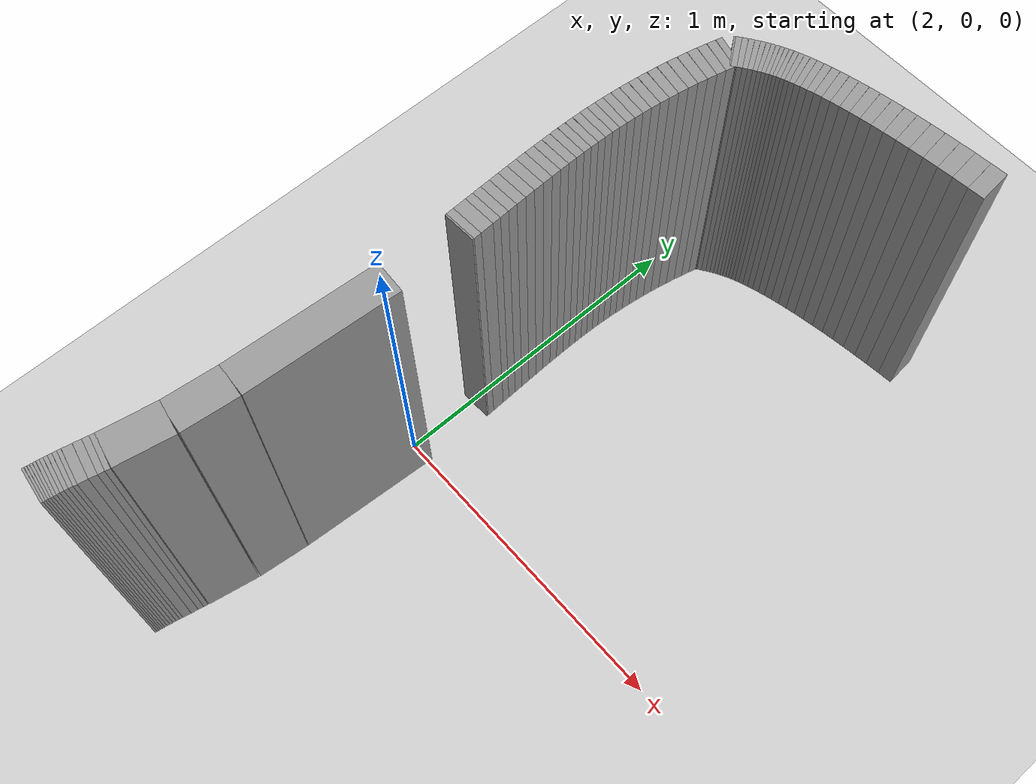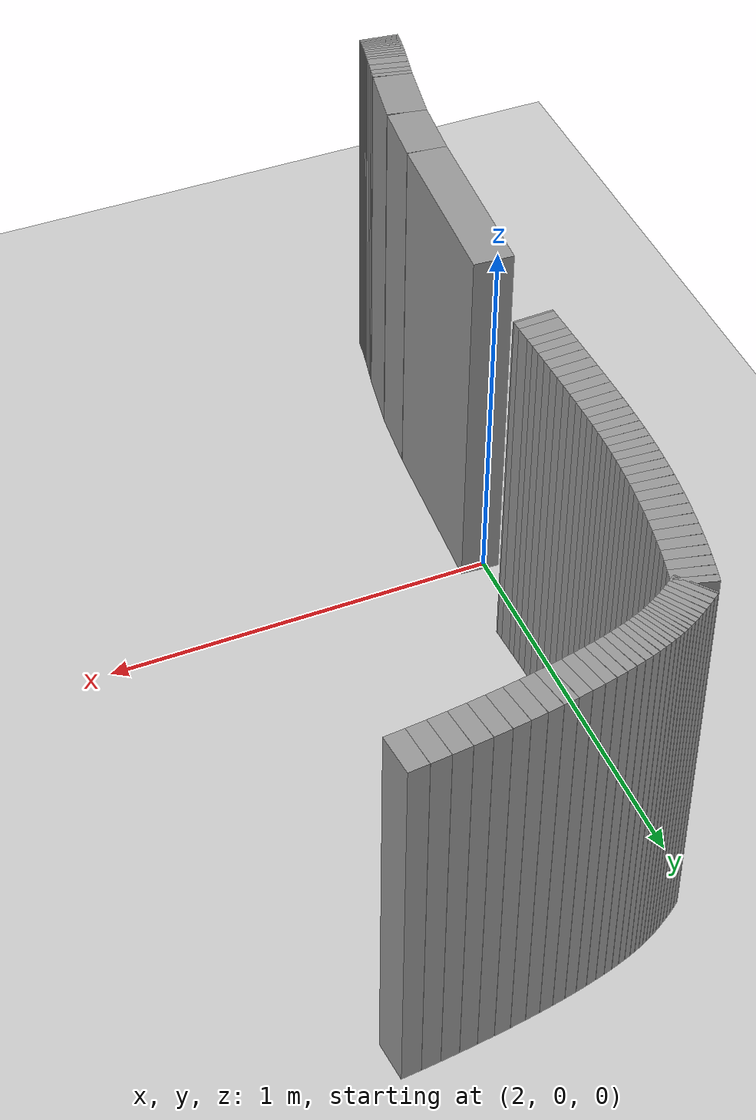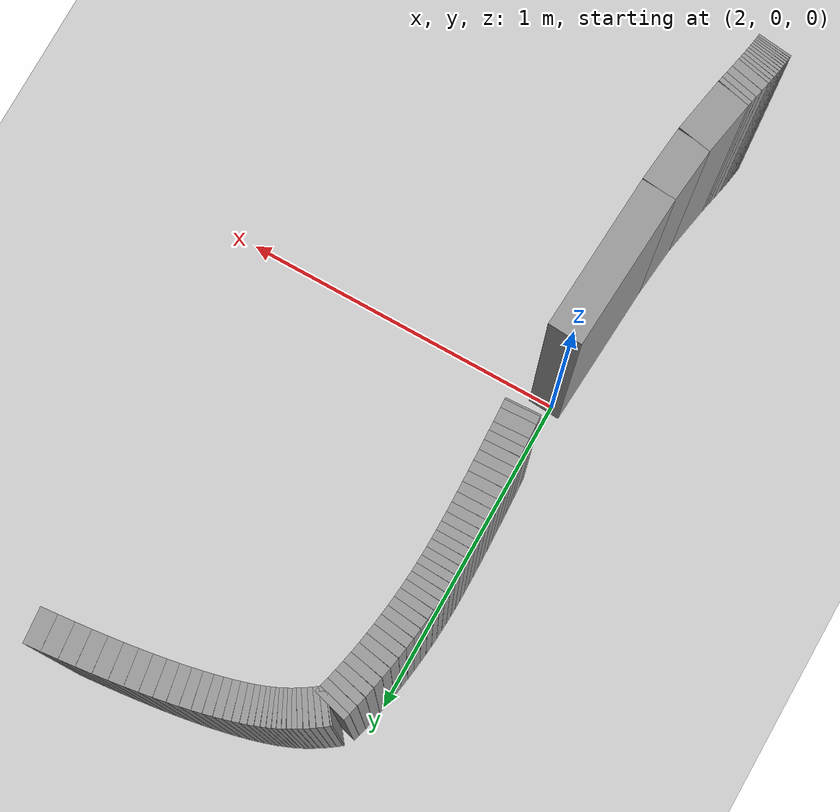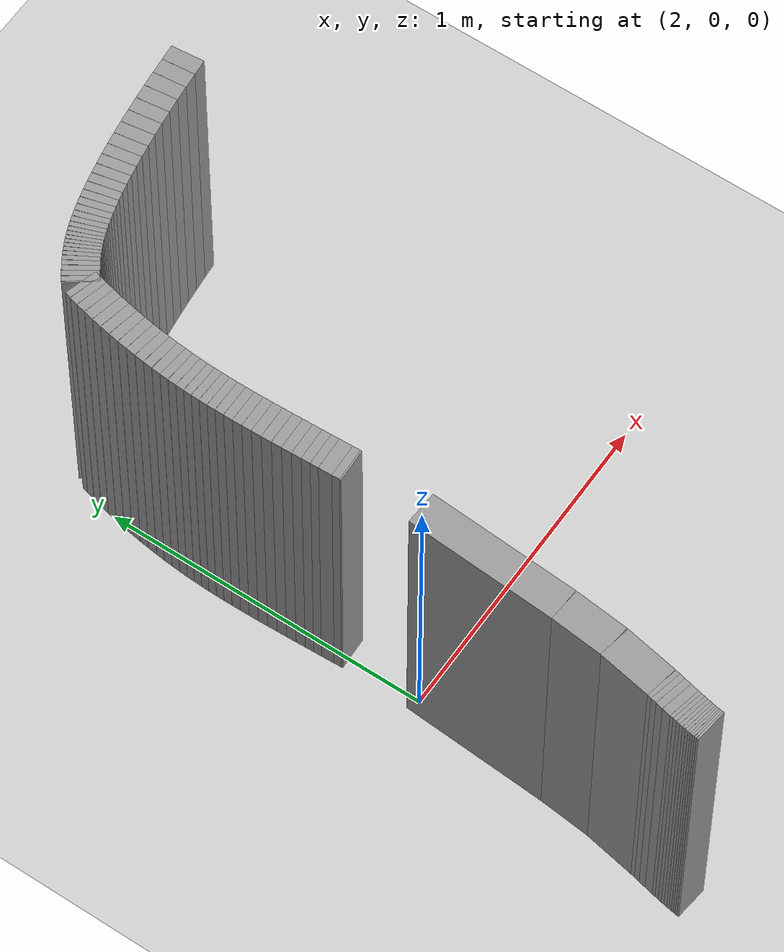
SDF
<sdf version="1.6">
 <world name="default">
  <include><uri>model://ground_plane</uri></include>
  <include><uri>model://sun</uri></include>
  <model name="wall_0_inward">
   <static>true</static>
   <link name="link">
    <collision name="collision">
     <geometry><box><size>0.004752488777631584 0.1 1.0</size></box></geometry>
    </collision>
    <visual name="visual">
     <geometry><box><size>0.004752488777631584 0.1 1.0</size></box></geometry>
     <material>
      <script><uri>file://media/materials/scripts/gazebo.material</uri><name>Gazebo/Gray</name></script>
     </material>
    </visual>
   </link>
   <pose>2.0192168269931265 0.23028894062897728 0.5 0 0 1.6136763923638089</pose>
  </model>
  <model name="wall_1_inward">
   <static>true</static>
   <link name="link">
    <collision name="collision">
     <geometry><box><size>0.023342387828069237 0.1 1.0</size></box></geometry>
    </collision>
    <visual name="visual">
     <geometry><box><size>0.023342387828069237 0.1 1.0</size></box></geometry>
     <material>
      <script><uri>file://media/materials/scripts/gazebo.material</uri><name>Gazebo/Gray</name></script>
     </material>
    </visual>
   </link>
   <pose>2.0186158145275828 0.2443235160274392 0.5 0 0 1.613577079627767</pose>
  </model>
  <model name="wall_2_inward">
   <static>true</static>
   <link name="link">
    <collision name="collision">
     <geometry><box><size>0.03983751512291781 0.1 1.0</size></box></geometry>
    </collision>
    <visual name="visual">
     <geometry><box><size>0.03983751512291781 0.1 1.0</size></box></geometry>
     <material>
      <script><uri>file://media/materials/scripts/gazebo.material</uri><name>Gazebo/Gray</name></script>
     </material>
    </visual>
   </link>
   <pose>2.0172711593536725 0.2758848359116663 0.5 0 0 1.613256761917696</pose>
  </model>
  <model name="wall_3_inward">
   <static>true</static>
   <link name="link">
    <collision name="collision">
     <geometry><box><size>0.024427862933217706 0.1 1.0</size></box></geometry>
    </collision>
    <visual name="visual">
     <geometry><box><size>0.024427862933217706 0.1 1.0</size></box></geometry>
     <material>
      <script><uri>file://media/materials/scripts/gazebo.material</uri><name>Gazebo/Gray</name></script>
     </material>
    </visual>
   </link>
   <pose>2.0159151530311705 0.30798889870328605 0.5 0 0 1.6126051479106165</pose>
  </model>
  <model name="wall_4_inward">
   <static>true</static>
   <link name="link">
    <collision name="collision">
     <geometry><box><size>0.026964489736908515 0.1 1.0</size></box></geometry>
    </collision>
    <visual name="visual">
     <geometry><box><size>0.026964489736908515 0.1 1.0</size></box></geometry>
     <material>
      <script><uri>file://media/materials/scripts/gazebo.material</uri><name>Gazebo/Gray</name></script>
     </material>
    </visual>
   </link>
   <pose>2.014852378140991 0.33366308560661406 0.5 0 0 1.611770818853796</pose>
  </model>
  <model name="wall_5_inward">
   <static>true</static>
   <link name="link">
    <collision name="collision">
     <geometry><box><size>0.028721153649069468 0.1 1.0</size></box></geometry>
    </collision>
    <visual name="visual">
     <geometry><box><size>0.028721153649069468 0.1 1.0</size></box></geometry>
     <material>
      <script><uri>file://media/materials/scripts/gazebo.material</uri><name>Gazebo/Gray</name></script>
     </material>
    </visual>
   </link>
   <pose>2.0137296399317623 0.36148325600857956 0.5 0 0 1.6105311360931867</pose>
  </model>
  <model name="wall_6_inward">
   <static>true</static>
   <link name="link">
    <collision name="collision">
     <geometry><box><size>0.02982938638237102 0.1 1.0</size></box></geometry>
    </collision>
    <visual name="visual">
     <geometry><box><size>0.02982938638237102 0.1 1.0</size></box></geometry>
     <material>
      <script><uri>file://media/materials/scripts/gazebo.material</uri><name>Gazebo/Gray</name></script>
     </material>
    </visual>
   </link>
   <pose>2.0125932463432052 0.39073645009895075 0.5 0 0 1.6087498288129731</pose>
  </model>
  <model name="wall_7_inward">
   <static>true</static>
   <link name="link">
    <collision name="collision">
     <geometry><box><size>0.030343167874813035 0.1 1.0</size></box></geometry>
    </collision>
    <visual name="visual">
     <geometry><box><size>0.030343167874813035 0.1 1.0</size></box></geometry>
     <material>
      <script><uri>file://media/materials/scripts/gazebo.material</uri><name>Gazebo/Gray</name></script>
     </material>
    </visual>
   </link>
   <pose>2.011488520161061 0.4208024161180741 0.5 0 0 1.6063173743649763</pose>
  </model>
  <model name="wall_8_inward">
   <static>true</static>
   <link name="link">
    <collision name="collision">
     <geometry><box><size>0.030314418424380436 0.1 1.0</size></box></geometry>
    </collision>
    <visual name="visual">
     <geometry><box><size>0.030314418424380436 0.1 1.0</size></box></geometry>
     <material>
      <script><uri>file://media/materials/scripts/gazebo.material</uri><name>Gazebo/Gray</name></script>
     </material>
    </visual>
   </link>
   <pose>2.010459952303529 0.4511137239637477 0.5 0 0 1.6031146702302448</pose>
  </model>
  <model name="wall_9_inward">
   <static>true</static>
   <link name="link">
    <collision name="collision">
     <geometry><box><size>0.029843154811731352 0.1 1.0</size></box></geometry>
    </collision>
    <visual name="visual">
     <geometry><box><size>0.029843154811731352 0.1 1.0</size></box></geometry>
     <material>
      <script><uri>file://media/materials/scripts/gazebo.material</uri><name>Gazebo/Gray</name></script>
     </material>
    </visual>
   </link>
   <pose>2.0095489324784364 0.48117864830306917 0.5 0 0 1.599030954062844</pose>
  </model>
  <model name="wall_10_inward">
   <static>true</static>
   <link name="link">
    <collision name="collision">
     <geometry><box><size>0.0290227304392933 0.1 1.0</size></box></geometry>
    </collision>
    <visual name="visual">
     <geometry><box><size>0.0290227304392933 0.1 1.0</size></box></geometry>
     <material>
      <script><uri>file://media/materials/scripts/gazebo.material</uri><name>Gazebo/Gray</name></script>
     </material>
    </visual>
   </link>
   <pose>2.0087912374655685 0.5106017428562545 0.5 0 0 1.5939833912730672</pose>
  </model>
  <model name="wall_11_inward">
   <static>true</static>
   <link name="link">
    <collision name="collision">
     <geometry><box><size>0.027980054495972583 0.1 1.0</size></box></geometry>
    </collision>
    <visual name="visual">
     <geometry><box><size>0.027980054495972583 0.1 1.0</size></box></geometry>
     <material>
      <script><uri>file://media/materials/scripts/gazebo.material</uri><name>Gazebo/Gray</name></script>
     </material>
    </visual>
   </link>
   <pose>2.0082157341983695 0.5390971919330221 0.5 0 0 1.5878848632838005</pose>
  </model>
  <model name="wall_12_inward">
   <static>true</static>
   <link name="link">
    <collision name="collision">
     <geometry><box><size>0.026877534619564606 0.1 1.0</size></box></geometry>
    </collision>
    <visual name="visual">
     <geometry><box><size>0.026877534619564606 0.1 1.0</size></box></geometry>
     <material>
      <script><uri>file://media/materials/scripts/gazebo.material</uri><name>Gazebo/Gray</name></script>
     </material>
    </visual>
   </link>
   <pose>2.0078435032655686 0.5665232840025991 0.5 0 0 1.5807061387290586</pose>
  </model>
  <model name="wall_13_inward">
   <static>true</static>
   <link name="link">
    <collision name="collision">
     <geometry><box><size>0.02581808341216024 0.1 1.0</size></box></geometry>
    </collision>
    <visual name="visual">
     <geometry><box><size>0.02581808341216024 0.1 1.0</size></box></geometry>
     <material>
      <script><uri>file://media/materials/scripts/gazebo.material</uri><name>Gazebo/Gray</name></script>
     </material>
    </visual>
   </link>
   <pose>2.0076888932343033 0.5928704153523889 0.5 0 0 1.572456912039459</pose>
  </model>
  <model name="wall_14_inward">
   <static>true</static>
   <link name="link">
    <collision name="collision">
     <geometry><box><size>0.02494034010264103 0.1 1.0</size></box></geometry>
    </collision>
    <visual name="visual">
     <geometry><box><size>0.02494034010264103 0.1 1.0</size></box></geometry>
     <material>
      <script><uri>file://media/materials/scripts/gazebo.material</uri><name>Gazebo/Gray</name></script>
     </material>
    </visual>
   </link>
   <pose>2.007762821055829 0.618249244661087 0.5 0 0 1.5631488524611368</pose>
  </model>
  <model name="wall_15_inward">
   <static>true</static>
   <link name="link">
    <collision name="collision">
     <geometry><box><size>0.024343581088115216 0.1 1.0</size></box></geometry>
    </collision>
    <visual name="visual">
     <geometry><box><size>0.024343581088115216 0.1 1.0</size></box></geometry>
     <material>
      <script><uri>file://media/materials/scripts/gazebo.material</uri><name>Gazebo/Gray</name></script>
     </material>
    </visual>
   </link>
   <pose>2.0080762167423636 0.6428888876699473 0.5 0 0 1.5528825308320764</pose>
  </model>
  <model name="wall_16_inward">
   <static>true</static>
   <link name="link">
    <collision name="collision">
     <geometry><box><size>0.024041992400886777 0.1 1.0</size></box></geometry>
    </collision>
    <visual name="visual">
     <geometry><box><size>0.024041992400886777 0.1 1.0</size></box></geometry>
     <material>
      <script><uri>file://media/materials/scripts/gazebo.material</uri><name>Gazebo/Gray</name></script>
     </material>
    </visual>
   </link>
   <pose>2.0086435391284465 0.6670746457748014 0.5 0 0 1.5417354869921274</pose>
  </model>
  <model name="wall_17_inward">
   <static>true</static>
   <link name="link">
    <collision name="collision">
     <geometry><box><size>0.024066006515898745 0.1 1.0</size></box></geometry>
    </collision>
    <visual name="visual">
     <geometry><box><size>0.024066006515898745 0.1 1.0</size></box></geometry>
     <material>
      <script><uri>file://media/materials/scripts/gazebo.material</uri><name>Gazebo/Gray</name></script>
     </material>
    </visual>
   </link>
   <pose>2.009485944902835 0.6911134613185428 0.5 0 0 1.529804662983416</pose>
  </model>
  <model name="wall_18_inward">
   <static>true</static>
   <link name="link">
    <collision name="collision">
     <geometry><box><size>0.024414961323806196 0.1 1.0</size></box></geometry>
    </collision>
    <visual name="visual">
     <geometry><box><size>0.024414961323806196 0.1 1.0</size></box></geometry>
     <material>
      <script><uri>file://media/materials/scripts/gazebo.material</uri><name>Gazebo/Gray</name></script>
     </material>
    </visual>
   </link>
   <pose>2.0106330683846227 0.715326305365062 0.5 0 0 1.5171962381443225</pose>
  </model>
  <model name="wall_19_inward">
   <static>true</static>
   <link name="link">
    <collision name="collision">
     <geometry><box><size>0.025035178204173517 0.1 1.0</size></box></geometry>
    </collision>
    <visual name="visual">
     <geometry><box><size>0.025035178204173517 0.1 1.0</size></box></geometry>
     <material>
      <script><uri>file://media/materials/scripts/gazebo.material</uri><name>Gazebo/Gray</name></script>
     </material>
    </visual>
   </link>
   <pose>2.012122330133476 0.7400059456907732 0.5 0 0 1.5040203671051064</pose>
  </model>
  <model name="wall_20_inward">
   <static>true</static>
   <link name="link">
    <collision name="collision">
     <geometry><box><size>0.025840020215233482 0.1 1.0</size></box></geometry>
    </collision>
    <visual name="visual">
     <geometry><box><size>0.025840020215233482 0.1 1.0</size></box></geometry>
     <material>
      <script><uri>file://media/materials/scripts/gazebo.material</uri><name>Gazebo/Gray</name></script>
     </material>
    </visual>
   </link>
   <pose>2.013995731281431 0.7653738709611354 0.5 0 0 1.4903576464301487</pose>
  </model>
  <model name="wall_21_inward">
   <static>true</static>
   <link name="link">
    <collision name="collision">
     <geometry><box><size>0.02676281056988687 0.1 1.0</size></box></geometry>
    </collision>
    <visual name="visual">
     <geometry><box><size>0.02676281056988687 0.1 1.0</size></box></geometry>
     <material>
      <script><uri>file://media/materials/scripts/gazebo.material</uri><name>Gazebo/Gray</name></script>
     </material>
    </visual>
   </link>
   <pose>2.016296901283336 0.7915737708407318 0.5 0 0 1.4762692810938869</pose>
  </model>
  <model name="wall_22_inward">
   <static>true</static>
   <link name="link">
    <collision name="collision">
     <geometry><box><size>0.027727477202340273 0.1 1.0</size></box></geometry>
    </collision>
    <visual name="visual">
     <geometry><box><size>0.027727477202340273 0.1 1.0</size></box></geometry>
     <material>
      <script><uri>file://media/materials/scripts/gazebo.material</uri><name>Gazebo/Gray</name></script>
     </material>
    </visual>
   </link>
   <pose>2.019067803286827 0.8186769296321728 0.5 0 0 1.4618164100696722</pose>
  </model>
  <model name="wall_23_inward">
   <static>true</static>
   <link name="link">
    <collision name="collision">
     <geometry><box><size>0.02866187000461032 0.1 1.0</size></box></geometry>
    </collision>
    <visual name="visual">
     <geometry><box><size>0.02866187000461032 0.1 1.0</size></box></geometry>
     <material>
      <script><uri>file://media/materials/scripts/gazebo.material</uri><name>Gazebo/Gray</name></script>
     </material>
    </visual>
   </link>
   <pose>2.0223447819146765 0.8466797441127172 0.5 0 0 1.4470344970049571</pose>
  </model>
  <model name="wall_24_inward">
   <static>true</static>
   <link name="link">
    <collision name="collision">
     <geometry><box><size>0.02948811131125022 0.1 1.0</size></box></geometry>
    </collision>
    <visual name="visual">
     <geometry><box><size>0.02948811131125022 0.1 1.0</size></box></geometry>
     <material>
      <script><uri>file://media/materials/scripts/gazebo.material</uri><name>Gazebo/Gray</name></script>
     </material>
    </visual>
   </link>
   <pose>2.0261542668942782 0.8755032573518212 0.5 0 0 1.4319637068738533</pose>
  </model>
  <model name="wall_25_inward">
   <static>true</static>
   <link name="link">
    <collision name="collision">
     <geometry><box><size>0.030134634040723952 0.1 1.0</size></box></geometry>
    </collision>
    <visual name="visual">
     <geometry><box><size>0.030134634040723952 0.1 1.0</size></box></geometry>
     <material>
      <script><uri>file://media/materials/scripts/gazebo.material</uri><name>Gazebo/Gray</name></script>
     </material>
    </visual>
   </link>
   <pose>2.0305086081573593 0.9049940236370653 0.5 0 0 1.416611713133062</pose>
  </model>
  <model name="wall_26_inward">
   <static>true</static>
   <link name="link">
    <collision name="collision">
     <geometry><box><size>0.03053798128975762 0.1 1.0</size></box></geometry>
    </collision>
    <visual name="visual">
     <geometry><box><size>0.03053798128975762 0.1 1.0</size></box></geometry>
     <material>
      <script><uri>file://media/materials/scripts/gazebo.material</uri><name>Gazebo/Gray</name></script>
     </material>
    </visual>
   </link>
   <pose>2.0354028873412062 0.9349319837104837 0.5 0 0 1.4009903079884392</pose>
  </model>
  <model name="wall_27_inward">
   <static>true</static>
   <link name="link">
    <collision name="collision">
     <geometry><box><size>0.03061586388762394 0.1 1.0</size></box></geometry>
    </collision>
    <visual name="visual">
     <geometry><box><size>0.03061586388762394 0.1 1.0</size></box></geometry>
     <material>
      <script><uri>file://media/materials/scripts/gazebo.material</uri><name>Gazebo/Gray</name></script>
     </material>
    </visual>
   </link>
   <pose>2.04080980964906 0.965026073330829 0.5 0 0 1.385081383273069</pose>
  </model>
  <model name="wall_28_inward">
   <static>true</static>
   <link name="link">
    <collision name="collision">
     <geometry><box><size>0.0303097720092783 0.1 1.0</size></box></geometry>
    </collision>
    <visual name="visual">
     <geometry><box><size>0.0303097720092783 0.1 1.0</size></box></geometry>
     <material>
      <script><uri>file://media/materials/scripts/gazebo.material</uri><name>Gazebo/Gray</name></script>
     </material>
    </visual>
   </link>
   <pose>2.046676249670041 0.9949176603655661 0.5 0 0 1.3688413495702825</pose>
  </model>
  <model name="wall_29_inward">
   <static>true</static>
   <link name="link">
    <collision name="collision">
     <geometry><box><size>0.02955791235792056 0.1 1.0</size></box></geometry>
    </collision>
    <visual name="visual">
     <geometry><box><size>0.02955791235792056 0.1 1.0</size></box></geometry>
     <material>
      <script><uri>file://media/materials/scripts/gazebo.material</uri><name>Gazebo/Gray</name></script>
     </material>
    </visual>
   </link>
   <pose>2.052920907680636 1.024191833336301 0.5 0 0 1.3522098565217084</pose>
  </model>
  <model name="wall_30_inward">
   <static>true</static>
   <link name="link">
    <collision name="collision">
     <geometry><box><size>0.028283167487776567 0.1 1.0</size></box></geometry>
    </collision>
    <visual name="visual">
     <geometry><box><size>0.028283167487776567 0.1 1.0</size></box></geometry>
     <material>
      <script><uri>file://media/materials/scripts/gazebo.material</uri><name>Gazebo/Gray</name></script>
     </material>
    </visual>
   </link>
   <pose>2.0594282306387903 1.0523696812064463 0.5 0 0 1.3350881583846912</pose>
  </model>
  <model name="wall_31_inward">
   <static>true</static>
   <link name="link">
    <collision name="collision">
     <geometry><box><size>0.026414433879784847 0.1 1.0</size></box></geometry>
    </collision>
    <visual name="visual">
     <geometry><box><size>0.026414433879784847 0.1 1.0</size></box></geometry>
     <material>
      <script><uri>file://media/materials/scripts/gazebo.material</uri><name>Gazebo/Gray</name></script>
     </material>
    </visual>
   </link>
   <pose>2.0660425878792763 1.078905473690782 0.5 0 0 1.3173304100757355</pose>
  </model>
  <model name="wall_32_inward">
   <static>true</static>
   <link name="link">
    <collision name="collision">
     <geometry><box><size>0.019414632581959114 0.1 1.0</size></box></geometry>
    </collision>
    <visual name="visual">
     <geometry><box><size>0.019414632581959114 0.1 1.0</size></box></geometry>
     <material>
      <script><uri>file://media/materials/scripts/gazebo.material</uri><name>Gazebo/Gray</name></script>
     </material>
    </visual>
   </link>
   <pose>2.071962820517917 1.1010410202298524 0.5 0 0 1.2987503364009885</pose>
  </model>
  <model name="wall_33_inward">
   <static>true</static>
   <link name="link">
    <collision name="collision">
     <geometry><box><size>0.00434184248768998 0.1 1.0</size></box></geometry>
    </collision>
    <visual name="visual">
     <geometry><box><size>0.00434184248768998 0.1 1.0</size></box></geometry>
     <material>
      <script><uri>file://media/materials/scripts/gazebo.material</uri><name>Gazebo/Gray</name></script>
     </material>
    </visual>
   </link>
   <pose>2.0762786759465537 1.1117320166385367 0.5 0 0 0.6656428096408088</pose>
  </model>
  <model name="wall_34_inward">
   <static>true</static>
   <link name="link">
    <collision name="collision">
     <geometry><box><size>0.01620740392853996 0.1 1.0</size></box></geometry>
    </collision>
    <visual name="visual">
     <geometry><box><size>0.01620740392853996 0.1 1.0</size></box></geometry>
     <material>
      <script><uri>file://media/materials/scripts/gazebo.material</uri><name>Gazebo/Gray</name></script>
     </material>
    </visual>
   </link>
   <pose>2.0844747109766297 1.1179274460873625 0.5 0 0 0.642348373617484</pose>
  </model>
  <model name="wall_35_inward">
   <static>true</static>
   <link name="link">
    <collision name="collision">
     <geometry><box><size>0.016024789953852005 0.1 1.0</size></box></geometry>
    </collision>
    <visual name="visual">
     <geometry><box><size>0.016024789953852005 0.1 1.0</size></box></geometry>
     <material>
      <script><uri>file://media/materials/scripts/gazebo.material</uri><name>Gazebo/Gray</name></script>
     </material>
    </visual>
   </link>
   <pose>2.0974885633969143 1.1274318209614234 0.5 0 0 0.6191027200617825</pose>
  </model>
  <model name="wall_36_inward">
   <static>true</static>
   <link name="link">
    <collision name="collision">
     <geometry><box><size>0.015394686876047848 0.1 1.0</size></box></geometry>
    </collision>
    <visual name="visual">
     <geometry><box><size>0.015394686876047848 0.1 1.0</size></box></geometry>
     <material>
      <script><uri>file://media/materials/scripts/gazebo.material</uri><name>Gazebo/Gray</name></script>
     </material>
    </visual>
   </link>
   <pose>2.110385286359999 1.1364004719628125 0.5 0 0 0.5957206283178764</pose>
  </model>
  <model name="wall_37_inward">
   <static>true</static>
   <link name="link">
    <collision name="collision">
     <geometry><box><size>0.014469726756846457 0.1 1.0</size></box></geometry>
    </collision>
    <visual name="visual">
     <geometry><box><size>0.014469726756846457 0.1 1.0</size></box></geometry>
     <material>
      <script><uri>file://media/materials/scripts/gazebo.material</uri><name>Gazebo/Gray</name></script>
     </material>
    </visual>
   </link>
   <pose>2.1228395176630728 1.1446364826596567 0.5 0 0 0.5721070769158757</pose>
  </model>
  <model name="wall_38_inward">
   <static>true</static>
   <link name="link">
    <collision name="collision">
     <geometry><box><size>0.013412776095773358 0.1 1.0</size></box></geometry>
    </collision>
    <visual name="visual">
     <geometry><box><size>0.013412776095773358 0.1 1.0</size></box></geometry>
     <material>
      <script><uri>file://media/materials/scripts/gazebo.material</uri><name>Gazebo/Gray</name></script>
     </material>
    </visual>
   </link>
   <pose>2.1346459970955864 1.1520484858478324 0.5 0 0 0.5481942287500865</pose>
  </model>
  <model name="wall_39_inward">
   <static>true</static>
   <link name="link">
    <collision name="collision">
     <geometry><box><size>0.012406153368581552 0.1 1.0</size></box></geometry>
    </collision>
    <visual name="visual">
     <geometry><box><size>0.012406153368581552 0.1 1.0</size></box></geometry>
     <material>
      <script><uri>file://media/materials/scripts/gazebo.material</uri><name>Gazebo/Gray</name></script>
     </material>
    </visual>
   </link>
   <pose>2.145740434214863 1.1586472287748177 0.5 0 0 0.5240067062414621</pose>
  </model>
  <model name="wall_40_inward">
   <static>true</static>
   <link name="link">
    <collision name="collision">
     <geometry><box><size>0.011580599240819856 0.1 1.0</size></box></geometry>
    </collision>
    <visual name="visual">
     <geometry><box><size>0.011580599240819856 0.1 1.0</size></box></geometry>
     <material>
      <script><uri>file://media/materials/scripts/gazebo.material</uri><name>Gazebo/Gray</name></script>
     </material>
    </visual>
   </link>
   <pose>2.1561937237846025 1.1645250212785694 0.5 0 0 0.4996154059463333</pose>
  </model>
  <model name="wall_41_inward">
   <static>true</static>
   <link name="link">
    <collision name="collision">
     <geometry><box><size>0.011053928107542516 0.1 1.0</size></box></geometry>
    </collision>
    <visual name="visual">
     <geometry><box><size>0.011053928107542516 0.1 1.0</size></box></geometry>
     <material>
      <script><uri>file://media/materials/scripts/gazebo.material</uri><name>Gazebo/Gray</name></script>
     </material>
    </visual>
   </link>
   <pose>2.1661910090672936 1.1698274323633318 0.5 0 0 0.47513325128207967</pose>
  </model>
  <model name="wall_42_inward">
   <static>true</static>
   <link name="link">
    <collision name="collision">
     <geometry><box><size>0.010909448079172782 0.1 1.0</size></box></geometry>
    </collision>
    <visual name="visual">
     <geometry><box><size>0.010909448079172782 0.1 1.0</size></box></geometry>
     <material>
      <script><uri>file://media/materials/scripts/gazebo.material</uri><name>Gazebo/Gray</name></script>
     </material>
    </visual>
   </link>
   <pose>2.1760157654674535 1.174731884724579 0.5 0 0 0.45071012761808826</pose>
  </model>
  <model name="wall_43_inward">
   <static>true</static>
   <link name="link">
    <collision name="collision">
     <geometry><box><size>0.011180276009109102 0.1 1.0</size></box></geometry>
    </collision>
    <visual name="visual">
     <geometry><box><size>0.011180276009109102 0.1 1.0</size></box></geometry>
     <material>
      <script><uri>file://media/materials/scripts/gazebo.material</uri><name>Gazebo/Gray</name></script>
     </material>
    </visual>
   </link>
   <pose>2.1860151089919553 1.1794206216516416 0.5 0 0 0.4265129522699647</pose>
  </model>
  <model name="wall_44_inward">
   <static>true</static>
   <link name="link">
    <collision name="collision">
     <geometry><box><size>0.011852906119657116 0.1 1.0</size></box></geometry>
    </collision>
    <visual name="visual">
     <geometry><box><size>0.011852906119657116 0.1 1.0</size></box></geometry>
     <material>
      <script><uri>file://media/materials/scripts/gazebo.material</uri><name>Gazebo/Gray</name></script>
     </material>
    </visual>
   </link>
   <pose>2.1965568193039604 1.1840558594655581 0.5 0 0 0.40270106148708346</pose>
  </model>
  <model name="wall_45_inward">
   <static>true</static>
   <link name="link">
    <collision name="collision">
     <geometry><box><size>0.012911091815561486 0.1 1.0</size></box></geometry>
    </collision>
    <visual name="visual">
     <geometry><box><size>0.012911091815561486 0.1 1.0</size></box></geometry>
     <material>
      <script><uri>file://media/materials/scripts/gazebo.material</uri><name>Gazebo/Gray</name></script>
     </material>
    </visual>
   </link>
   <pose>2.2080056278477485 1.1887694500978003 0.5 0 0 0.3794148081217486</pose>
  </model>
  <model name="wall_46_inward">
   <static>true</static>
   <link name="link">
    <collision name="collision">
     <geometry><box><size>0.014284325088535357 0.1 1.0</size></box></geometry>
    </collision>
    <visual name="visual">
     <geometry><box><size>0.014284325088535357 0.1 1.0</size></box></geometry>
     <material>
      <script><uri>file://media/materials/scripts/gazebo.material</uri><name>Gazebo/Gray</name></script>
     </material>
    </visual>
   </link>
   <pose>2.220694429799522 1.1936549781051229 0.5 0 0 0.356791842051994</pose>
  </model>
  <model name="wall_47_inward">
   <static>true</static>
   <link name="link">
    <collision name="collision">
     <geometry><box><size>0.015904275914566033 0.1 1.0</size></box></geometry>
    </collision>
    <visual name="visual">
     <geometry><box><size>0.015904275914566033 0.1 1.0</size></box></geometry>
     <material>
      <script><uri>file://media/materials/scripts/gazebo.material</uri><name>Gazebo/Gray</name></script>
     </material>
    </visual>
   </link>
   <pose>2.234897126057822 1.1987632183671821 0.5 0 0 0.3349041199932808</pose>
  </model>
  <model name="wall_48_inward">
   <static>true</static>
   <link name="link">
    <collision name="collision">
     <geometry><box><size>0.017694539078928304 0.1 1.0</size></box></geometry>
    </collision>
    <visual name="visual">
     <geometry><box><size>0.017694539078928304 0.1 1.0</size></box></geometry>
     <material>
      <script><uri>file://media/materials/scripts/gazebo.material</uri><name>Gazebo/Gray</name></script>
     </material>
    </visual>
   </link>
   <pose>2.250822611077594 1.2041081013601698 0.5 0 0 0.31382991746779765</pose>
  </model>
  <model name="wall_49_inward">
   <static>true</static>
   <link name="link">
    <collision name="collision">
     <geometry><box><size>0.019601996180276266 0.1 1.0</size></box></geometry>
    </collision>
    <visual name="visual">
     <geometry><box><size>0.019601996180276266 0.1 1.0</size></box></geometry>
     <material>
      <script><uri>file://media/materials/scripts/gazebo.material</uri><name>Gazebo/Gray</name></script>
     </material>
    </visual>
   </link>
   <pose>2.2686194326740123 1.2096754572577209 0.5 0 0 0.29357456260246323</pose>
  </model>
  <model name="wall_50_inward">
   <static>true</static>
   <link name="link">
    <collision name="collision">
     <geometry><box><size>0.021595705938246702 0.1 1.0</size></box></geometry>
    </collision>
    <visual name="visual">
     <geometry><box><size>0.021595705938246702 0.1 1.0</size></box></geometry>
     <material>
      <script><uri>file://media/materials/scripts/gazebo.material</uri><name>Gazebo/Gray</name></script>
     </material>
    </visual>
   </link>
   <pose>2.288395636543533 1.2154351973891924 0.5 0 0 0.27417693484043487</pose>
  </model>
  <model name="wall_51_inward">
   <static>true</static>
   <link name="link">
    <collision name="collision">
     <geometry><box><size>0.023637801076274136 0.1 1.0</size></box></geometry>
    </collision>
    <visual name="visual">
     <geometry><box><size>0.023637801076274136 0.1 1.0</size></box></geometry>
     <material>
      <script><uri>file://media/materials/scripts/gazebo.material</uri><name>Gazebo/Gray</name></script>
     </material>
    </visual>
   </link>
   <pose>2.3102250222273475 1.221347180054436 0.5 0 0 0.2556252093488778</pose>
  </model>
  <model name="wall_52_inward">
   <static>true</static>
   <link name="link">
    <collision name="collision">
     <geometry><box><size>0.02573562566059335 0.1 1.0</size></box></geometry>
    </collision>
    <visual name="visual">
     <geometry><box><size>0.02573562566059335 0.1 1.0</size></box></geometry>
     <material>
      <script><uri>file://media/materials/scripts/gazebo.material</uri><name>Gazebo/Gray</name></script>
     </material>
    </visual>
   </link>
   <pose>2.334165168256865 1.2273684434663472 0.5 0 0 0.23793134390882767</pose>
  </model>
  <model name="wall_53_inward">
   <static>true</static>
   <link name="link">
    <collision name="collision">
     <geometry><box><size>0.02786447518277288 0.1 1.0</size></box></geometry>
    </collision>
    <visual name="visual">
     <geometry><box><size>0.02786447518277288 0.1 1.0</size></box></geometry>
     <material>
      <script><uri>file://media/materials/scripts/gazebo.material</uri><name>Gazebo/Gray</name></script>
     </material>
    </visual>
   </link>
   <pose>2.360263542587016 1.2334566928744128 0.5 0 0 0.2211013209942195</pose>
  </model>
  <model name="wall_54_inward">
   <static>true</static>
   <link name="link">
    <collision name="collision">
     <geometry><box><size>0.03000685517327661 0.1 1.0</size></box></geometry>
    </collision>
    <visual name="visual">
     <geometry><box><size>0.03000685517327661 0.1 1.0</size></box></geometry>
     <material>
      <script><uri>file://media/materials/scripts/gazebo.material</uri><name>Gazebo/Gray</name></script>
     </material>
    </visual>
   </link>
   <pose>2.38854549458277 1.239568205860544 0.5 0 0 0.2051299396366354</pose>
  </model>
  <model name="wall_55_inward">
   <static>true</static>
   <link name="link">
    <collision name="collision">
     <geometry><box><size>0.032166927412550395 0.1 1.0</size></box></geometry>
    </collision>
    <visual name="visual">
     <geometry><box><size>0.032166927412550395 0.1 1.0</size></box></geometry>
     <material>
      <script><uri>file://media/materials/scripts/gazebo.material</uri><name>Gazebo/Gray</name></script>
     </material>
    </visual>
   </link>
   <pose>2.4190283653760476 1.2456619927166637 0.5 0 0 0.19001062667307636</pose>
  </model>
  <model name="wall_56_inward">
   <static>true</static>
   <link name="link">
    <collision name="collision">
     <geometry><box><size>0.034327217895600566 0.1 1.0</size></box></geometry>
    </collision>
    <visual name="visual">
     <geometry><box><size>0.034327217895600566 0.1 1.0</size></box></geometry>
     <material>
      <script><uri>file://media/materials/scripts/gazebo.material</uri><name>Gazebo/Gray</name></script>
     </material>
    </visual>
   </link>
   <pose>2.4517215949020157 1.2517005687269118 0.5 0 0 0.17574430428942867</pose>
  </model>
  <model name="wall_57_inward">
   <static>true</static>
   <link name="link">
    <collision name="collision">
     <geometry><box><size>0.036452578061710886 0.1 1.0</size></box></geometry>
    </collision>
    <visual name="visual">
     <geometry><box><size>0.036452578061710886 0.1 1.0</size></box></geometry>
     <material>
      <script><uri>file://media/materials/scripts/gazebo.material</uri><name>Gazebo/Gray</name></script>
     </material>
    </visual>
   </link>
   <pose>2.4866075669097363 1.2576467743529203 0.5 0 0 0.16230809736749532</pose>
  </model>
  <model name="wall_58_inward">
   <static>true</static>
   <link name="link">
    <collision name="collision">
     <geometry><box><size>0.03851946863091659 0.1 1.0</size></box></geometry>
    </collision>
    <visual name="visual">
     <geometry><box><size>0.03851946863091659 0.1 1.0</size></box></geometry>
     <material>
      <script><uri>file://media/materials/scripts/gazebo.material</uri><name>Gazebo/Gray</name></script>
     </material>
    </visual>
   </link>
   <pose>2.523638731266228 1.263463880349188 0.5 0 0 0.14966732902434082</pose>
  </model>
  <model name="wall_59_inward">
   <static>true</static>
   <link name="link">
    <collision name="collision">
     <geometry><box><size>0.04049601876120592 0.1 1.0</size></box></geometry>
    </collision>
    <visual name="visual">
     <geometry><box><size>0.04049601876120592 0.1 1.0</size></box></geometry>
     <material>
      <script><uri>file://media/materials/scripts/gazebo.material</uri><name>Gazebo/Gray</name></script>
     </material>
    </visual>
   </link>
   <pose>2.5627392968633296 1.2691165280702217 0.5 0 0 0.13777460400087937</pose>
  </model>
  <model name="wall_60_inward">
   <static>true</static>
   <link name="link">
    <collision name="collision">
     <geometry><box><size>0.04234193251986517 0.1 1.0</size></box></geometry>
    </collision>
    <visual name="visual">
     <geometry><box><size>0.04234193251986517 0.1 1.0</size></box></geometry>
     <material>
      <script><uri>file://media/materials/scripts/gazebo.material</uri><name>Gazebo/Gray</name></script>
     </material>
    </visual>
   </link>
   <pose>2.6037970703400584 1.274569682712818 0.5 0 0 0.12656285265092168</pose>
  </model>
  <model name="wall_61_inward">
   <static>true</static>
   <link name="link">
    <collision name="collision">
     <geometry><box><size>0.04405826917708966 0.1 1.0</size></box></geometry>
    </collision>
    <visual name="visual">
     <geometry><box><size>0.04405826917708966 0.1 1.0</size></box></geometry>
     <material>
      <script><uri>file://media/materials/scripts/gazebo.material</uri><name>Gazebo/Gray</name></script>
     </material>
    </visual>
   </link>
   <pose>2.646679934680831 1.2797904172972596 0.5 0 0 0.11594386499982481</pose>
  </model>
  <model name="wall_62_inward">
   <static>true</static>
   <link name="link">
    <collision name="collision">
     <geometry><box><size>0.04564380991280086 0.1 1.0</size></box></geometry>
    </collision>
    <visual name="visual">
     <geometry><box><size>0.04564380991280086 0.1 1.0</size></box></geometry>
     <material>
      <script><uri>file://media/materials/scripts/gazebo.material</uri><name>Gazebo/Gray</name></script>
     </material>
    </visual>
   </link>
   <pose>2.6912553336992966 1.2847500900894295 0.5 0 0 0.10585257013664313</pose>
  </model>
  <model name="wall_63_inward">
   <static>true</static>
   <link name="link">
    <collision name="collision">
     <geometry><box><size>0.0470834451129657 0.1 1.0</size></box></geometry>
    </collision>
    <visual name="visual">
     <geometry><box><size>0.0470834451129657 0.1 1.0</size></box></geometry>
     <material>
      <script><uri>file://media/materials/scripts/gazebo.material</uri><name>Gazebo/Gray</name></script>
     </material>
    </visual>
   </link>
   <pose>2.7373823761785174 1.2894225459529731 0.5 0 0 0.0961993666219787</pose>
  </model>
  <model name="wall_64_inward">
   <static>true</static>
   <link name="link">
    <collision name="collision">
     <geometry><box><size>0.0484265431803217 0.1 1.0</size></box></geometry>
    </collision>
    <visual name="visual">
     <geometry><box><size>0.0484265431803217 0.1 1.0</size></box></geometry>
     <material>
      <script><uri>file://media/materials/scripts/gazebo.material</uri><name>Gazebo/Gray</name></script>
     </material>
    </visual>
   </link>
   <pose>2.784937141412642 1.2937854060905072 0.5 0 0 0.08690691188381337</pose>
  </model>
  <model name="wall_379_inward">
   <static>true</static>
   <link name="link">
    <collision name="collision">
     <geometry><box><size>0.00617778713166115 0.1 1.0</size></box></geometry>
    </collision>
    <visual name="visual">
     <geometry><box><size>0.00617778713166115 0.1 1.0</size></box></geometry>
     <material>
      <script><uri>file://media/materials/scripts/gazebo.material</uri><name>Gazebo/Gray</name></script>
     </material>
    </visual>
   </link>
   <pose>1.9100558153280955 -0.9140397152409492 0.5 0 0 1.4480168512901093</pose>
  </model>
  <model name="wall_380_inward">
   <static>true</static>
   <link name="link">
    <collision name="collision">
     <geometry><box><size>0.00603984882097997 0.1 1.0</size></box></geometry>
    </collision>
    <visual name="visual">
     <geometry><box><size>0.00603984882097997 0.1 1.0</size></box></geometry>
     <material>
      <script><uri>file://media/materials/scripts/gazebo.material</uri><name>Gazebo/Gray</name></script>
     </material>
    </visual>
   </link>
   <pose>1.9108367033203697 -0.9079811051007176 0.5 0 0 1.4370878535338514</pose>
  </model>
  <model name="wall_381_inward">
   <static>true</static>
   <link name="link">
    <collision name="collision">
     <geometry><box><size>0.006172575934879083 0.1 1.0</size></box></geometry>
    </collision>
    <visual name="visual">
     <geometry><box><size>0.006172575934879083 0.1 1.0</size></box></geometry>
     <material>
      <script><uri>file://media/materials/scripts/gazebo.material</uri><name>Gazebo/Gray</name></script>
     </material>
    </visual>
   </link>
   <pose>1.911683340354178 -0.9019339591566395 0.5 0 0 1.4264170182876332</pose>
  </model>
  <model name="wall_382_inward">
   <static>true</static>
   <link name="link">
    <collision name="collision">
     <geometry><box><size>0.006574169274286912 0.1 1.0</size></box></geometry>
    </collision>
    <visual name="visual">
     <geometry><box><size>0.006574169274286912 0.1 1.0</size></box></geometry>
     <material>
      <script><uri>file://media/materials/scripts/gazebo.material</uri><name>Gazebo/Gray</name></script>
     </material>
    </visual>
   </link>
   <pose>1.9126337143611047 -0.8956319279430502 0.5 0 0 1.4161461294668918</pose>
  </model>
  <model name="wall_383_inward">
   <static>true</static>
   <link name="link">
    <collision name="collision">
     <geometry><box><size>0.007176922782603107 0.1 1.0</size></box></geometry>
    </collision>
    <visual name="visual">
     <geometry><box><size>0.007176922782603107 0.1 1.0</size></box></geometry>
     <material>
      <script><uri>file://media/materials/scripts/gazebo.material</uri><name>Gazebo/Gray</name></script>
     </material>
    </visual>
   </link>
   <pose>1.9137272153063487 -0.8888439772275807 0.5 0 0 1.406428144613298</pose>
  </model>
  <model name="wall_384_inward">
   <static>true</static>
   <link name="link">
    <collision name="collision">
     <geometry><box><size>0.00792913480120454 0.1 1.0</size></box></geometry>
    </collision>
    <visual name="visual">
     <geometry><box><size>0.00792913480120454 0.1 1.0</size></box></geometry>
     <material>
      <script><uri>file://media/materials/scripts/gazebo.material</uri><name>Gazebo/Gray</name></script>
     </material>
    </visual>
   </link>
   <pose>1.9149986120743285 -0.8813988029377702 0.5 0 0 1.3973440730100337</pose>
  </model>
  <model name="wall_385_inward">
   <static>true</static>
   <link name="link">
    <collision name="collision">
     <geometry><box><size>0.008816840188051536 0.1 1.0</size></box></geometry>
    </collision>
    <visual name="visual">
     <geometry><box><size>0.008816840188051536 0.1 1.0</size></box></geometry>
     <material>
      <script><uri>file://media/materials/scripts/gazebo.material</uri><name>Gazebo/Gray</name></script>
     </material>
    </visual>
   </link>
   <pose>1.9164798291579956 -0.8731579473544517 0.5 0 0 1.389007017832971</pose>
  </model>
  <model name="wall_386_inward">
   <static>true</static>
   <link name="link">
    <collision name="collision">
     <geometry><box><size>0.009717686686179608 0.1 1.0</size></box></geometry>
    </collision>
    <visual name="visual">
     <geometry><box><size>0.009717686686179608 0.1 1.0</size></box></geometry>
     <material>
      <script><uri>file://media/materials/scripts/gazebo.material</uri><name>Gazebo/Gray</name></script>
     </material>
    </visual>
   </link>
   <pose>1.91819112335667 -0.864050124597908 0.5 0 0 1.3814959629402679</pose>
  </model>
  <model name="wall_387_inward">
   <static>true</static>
   <link name="link">
    <collision name="collision">
     <geometry><box><size>0.010550828048941025 0.1 1.0</size></box></geometry>
    </collision>
    <visual name="visual">
     <geometry><box><size>0.010550828048941025 0.1 1.0</size></box></geometry>
     <material>
      <script><uri>file://media/materials/scripts/gazebo.material</uri><name>Gazebo/Gray</name></script>
     </material>
    </visual>
   </link>
   <pose>1.92013267545499 -0.8541036475730626 0.5 0 0 1.3748192919734326</pose>
  </model>
  <model name="wall_388_inward">
   <static>true</static>
   <link name="link">
    <collision name="collision">
     <geometry><box><size>0.01126488889456504 0.1 1.0</size></box></geometry>
    </collision>
    <visual name="visual">
     <geometry><box><size>0.01126488889456504 0.1 1.0</size></box></geometry>
     <material>
      <script><uri>file://media/materials/scripts/gazebo.material</uri><name>Gazebo/Gray</name></script>
     </material>
    </visual>
   </link>
   <pose>1.9222888665561262 -0.8434110703162632 0.5 0 0 1.3689949027703627</pose>
  </model>
  <model name="wall_389_inward">
   <static>true</static>
   <link name="link">
    <collision name="collision">
     <geometry><box><size>0.010086743496137519 0.1 1.0</size></box></geometry>
    </collision>
    <visual name="visual">
     <geometry><box><size>0.010086743496137519 0.1 1.0</size></box></geometry>
     <material>
      <script><uri>file://media/materials/scripts/gazebo.material</uri><name>Gazebo/Gray</name></script>
     </material>
    </visual>
   </link>
   <pose>1.9244533277932119 -0.8329570064775871 0.5 0 0 1.3640016464269624</pose>
  </model>
  <model name="wall_390_inward">
   <static>true</static>
   <link name="link">
    <collision name="collision">
     <geometry><box><size>0.026322803961480387 0.1 1.0</size></box></geometry>
    </collision>
    <visual name="visual">
     <geometry><box><size>0.026322803961480387 0.1 1.0</size></box></geometry>
     <material>
      <script><uri>file://media/materials/scripts/gazebo.material</uri><name>Gazebo/Gray</name></script>
     </material>
    </visual>
   </link>
   <pose>1.9282670806435749 -0.8151562545394342 0.5 0 0 1.3581073384898383</pose>
  </model>
  <model name="wall_391_inward">
   <static>true</static>
   <link name="link">
    <collision name="collision">
     <geometry><box><size>0.0219909912974545 0.1 1.0</size></box></geometry>
    </collision>
    <visual name="visual">
     <geometry><box><size>0.0219909912974545 0.1 1.0</size></box></geometry>
     <material>
      <script><uri>file://media/materials/scripts/gazebo.material</uri><name>Gazebo/Gray</name></script>
     </material>
    </visual>
   </link>
   <pose>1.9334279718517582 -0.7915571837968918 0.5 0 0 1.352369102406306</pose>
  </model>
  <model name="wall_392_inward">
   <static>true</static>
   <link name="link">
    <collision name="collision">
     <geometry><box><size>0.017306370708798206 0.1 1.0</size></box></geometry>
    </collision>
    <visual name="visual">
     <geometry><box><size>0.017306370708798206 0.1 1.0</size></box></geometry>
     <material>
      <script><uri>file://media/materials/scripts/gazebo.material</uri><name>Gazebo/Gray</name></script>
     </material>
    </visual>
   </link>
   <pose>1.9377162525826164 -0.7723821982527279 0.5 0 0 1.3487547881956203</pose>
  </model>
  <model name="wall_393_inward">
   <static>true</static>
   <link name="link">
    <collision name="collision">
     <geometry><box><size>0.013942550446158625 0.1 1.0</size></box></geometry>
    </collision>
    <visual name="visual">
     <geometry><box><size>0.013942550446158625 0.1 1.0</size></box></geometry>
     <material>
      <script><uri>file://media/materials/scripts/gazebo.material</uri><name>Gazebo/Gray</name></script>
     </material>
    </visual>
   </link>
   <pose>1.9411718849332296 -0.757144675885639 0.5 0 0 1.3465792616971448</pose>
  </model>
  <model name="wall_394_inward">
   <static>true</static>
   <link name="link">
    <collision name="collision">
     <geometry><box><size>0.16090519622631358 0.1 1.0</size></box></geometry>
    </collision>
    <visual name="visual">
     <geometry><box><size>0.16090519622631358 0.1 1.0</size></box></geometry>
     <material>
      <script><uri>file://media/materials/scripts/gazebo.material</uri><name>Gazebo/Gray</name></script>
     </material>
    </visual>
   </link>
   <pose>1.9574402001472724 -0.6712530719432059 0.5 0 0 1.386816417393123</pose>
  </model>
  <model name="wall_395_inward">
   <static>true</static>
   <link name="link">
    <collision name="collision">
     <geometry><box><size>0.1609051962263136 0.1 1.0</size></box></geometry>
    </collision>
    <visual name="visual">
     <geometry><box><size>0.1609051962263136 0.1 1.0</size></box></geometry>
     <material>
      <script><uri>file://media/materials/scripts/gazebo.material</uri><name>Gazebo/Gray</name></script>
     </material>
    </visual>
   </link>
   <pose>1.9804709337532178 -0.512136219707169 0.5 0 0 1.4672907287850896</pose>
  </model>
  <model name="wall_396_inward">
   <static>true</static>
   <link name="link">
    <collision name="collision">
     <geometry><box><size>0.4487405747052752 0.1 1.0</size></box></geometry>
    </collision>
    <visual name="visual">
     <geometry><box><size>0.4487405747052752 0.1 1.0</size></box></geometry>
     <material>
      <script><uri>file://media/materials/scripts/gazebo.material</uri><name>Gazebo/Gray</name></script>
     </material>
    </visual>
   </link>
   <pose>2.0029694569645144 -0.2081928260736861 0.5 0 0 1.5075278844810729</pose>
  </model>
 </world>
</sdf>
